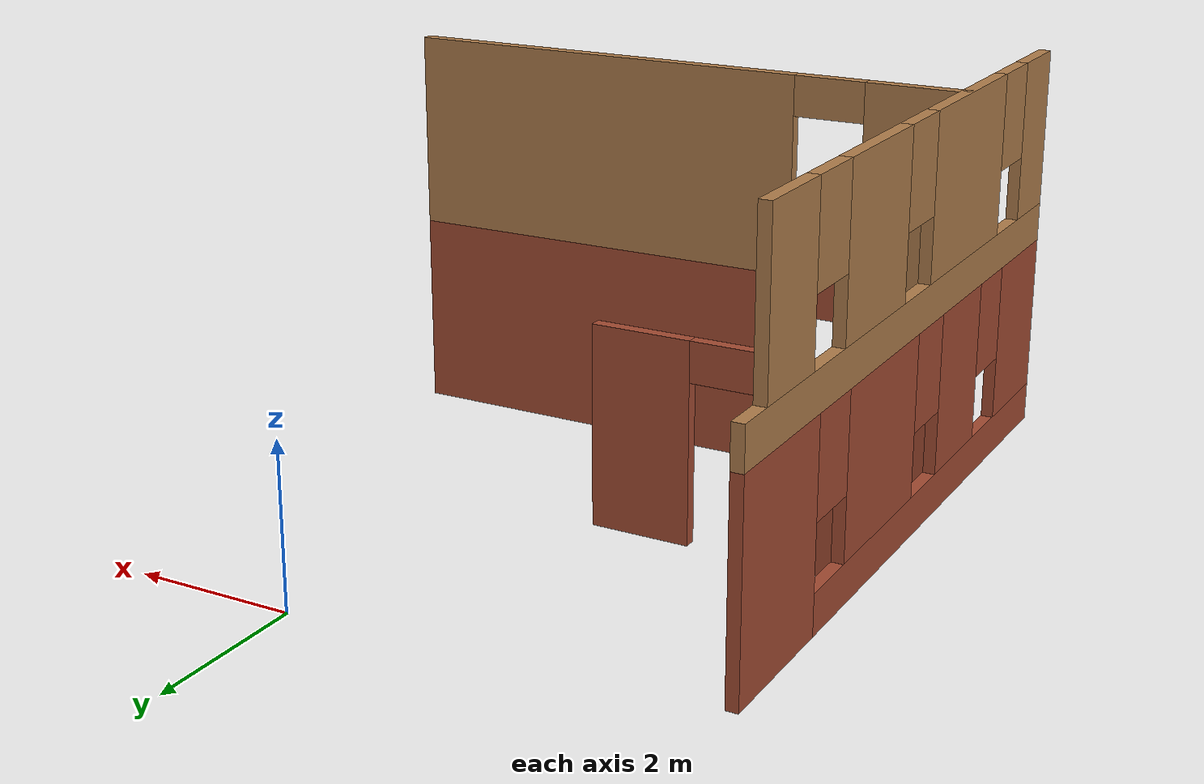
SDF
<sdf version="1.7">
 <model name="House">
  <pose>3.17663 -1.38106 0 0 -0 0</pose>
  <link name="Wall_17">
   <pose>-6.525 -2.26679 0 0 -0 3.14159</pose>
   <visual name="Wall_17_Visual_0">
    <pose>-1.00117 0 1.25 0 -0 0</pose>
    <geometry><box><size>1.24766 0.15 2.5</size></box></geometry>
    <material>
     <script><uri>file://media/materials/scripts/gazebo.material</uri><name>Gazebo/Bricks</name></script>
     <ambient>0.921569 0.807843 0.615686 1</ambient>
    </material>
    <meta><layer>0</layer></meta>
   </visual>
   <collision name="Wall_17_Collision_0">
    <geometry><box><size>1.24766 0.15 2.5</size></box></geometry>
    <pose>-1.00117 0 1.25 0 -0 0</pose>
   </collision>
   <visual name="Wall_17_Visual_1">
    <pose>1.07383 0 1.25 0 -0 0</pose>
    <geometry><box><size>1.10234 0.15 2.5</size></box></geometry>
    <material>
     <script><uri>file://media/materials/scripts/gazebo.material</uri><name>Gazebo/Bricks</name></script>
     <ambient>0.921569 0.807843 0.615686 1</ambient>
    </material>
    <meta><layer>0</layer></meta>
   </visual>
   <collision name="Wall_17_Collision_1">
    <geometry><box><size>1.10234 0.15 2.5</size></box></geometry>
    <pose>1.07383 0 1.25 0 -0 0</pose>
   </collision>
   <visual name="Wall_17_Visual_2">
    <pose>0.072664 0 2.25 0 -0 0</pose>
    <geometry><box><size>0.9 0.15 0.5</size></box></geometry>
    <material>
     <script><uri>file://media/materials/scripts/gazebo.material</uri><name>Gazebo/Bricks</name></script>
     <ambient>0.921569 0.807843 0.615686 1</ambient>
    </material>
    <meta><layer>0</layer></meta>
   </visual>
   <collision name="Wall_17_Collision_2">
    <geometry><box><size>0.9 0.15 0.5</size></box></geometry>
    <pose>0.072664 0 2.25 0 -0 0</pose>
   </collision>
  </link>
  <link name="Wall_2">
   <pose>-8.225 -3.54179 0 0 -0 -1.5708</pose>
   <visual name="Wall_2_Visual_0">
    <pose>-3.60549 0 1.25 0 -0 0</pose>
    <geometry><box><size>1.78902 0.15 2.5</size></box></geometry>
    <material>
     <script><uri>file://media/materials/scripts/gazebo.material</uri><name>Gazebo/Bricks</name></script>
     <ambient>0.435294 0.796078 0.67451 1</ambient>
    </material>
    <meta><layer>0</layer></meta>
   </visual>
   <collision name="Wall_2_Collision_0">
    <geometry><box><size>1.78902 0.15 2.5</size></box></geometry>
    <pose>-3.60549 0 1.25 0 -0 0</pose>
   </collision>
   <visual name="Wall_2_Visual_1">
    <pose>0.894508 0 0.25 0 -0 0</pose>
    <geometry><box><size>7.21098 0.15 0.5</size></box></geometry>
    <material>
     <script><uri>file://media/materials/scripts/gazebo.material</uri><name>Gazebo/Bricks</name></script>
     <ambient>0.435294 0.796078 0.67451 1</ambient>
    </material>
    <meta><layer>0</layer></meta>
   </visual>
   <collision name="Wall_2_Collision_1">
    <geometry><box><size>7.21098 0.15 0.5</size></box></geometry>
    <pose>0.894508 0 0.25 0 -0 0</pose>
   </collision>
   <visual name="Wall_2_Visual_2">
    <pose>-0.904174 0 1.5 0 -0 0</pose>
    <geometry><box><size>2.01362 0.15 2</size></box></geometry>
    <material>
     <script><uri>file://media/materials/scripts/gazebo.material</uri><name>Gazebo/Bricks</name></script>
     <ambient>0.435294 0.796078 0.67451 1</ambient>
    </material>
    <meta><layer>0</layer></meta>
   </visual>
   <collision name="Wall_2_Collision_2">
    <geometry><box><size>2.01362 0.15 2</size></box></geometry>
    <pose>-0.904174 0 1.5 0 -0 0</pose>
   </collision>
   <visual name="Wall_2_Visual_3">
    <pose>1.57485 0 1.5 0 -0 0</pose>
    <geometry><box><size>1.34443 0.15 2</size></box></geometry>
    <material>
     <script><uri>file://media/materials/scripts/gazebo.material</uri><name>Gazebo/Bricks</name></script>
     <ambient>0.435294 0.796078 0.67451 1</ambient>
    </material>
    <meta><layer>0</layer></meta>
   </visual>
   <collision name="Wall_2_Collision_3">
    <geometry><box><size>1.34443 0.15 2</size></box></geometry>
    <pose>1.57485 0 1.5 0 -0 0</pose>
   </collision>
   <visual name="Wall_2_Visual_4">
    <pose>3.77353 0 1.5 0 -0 0</pose>
    <geometry><box><size>1.45293 0.15 2</size></box></geometry>
    <material>
     <script><uri>file://media/materials/scripts/gazebo.material</uri><name>Gazebo/Bricks</name></script>
     <ambient>0.435294 0.796078 0.67451 1</ambient>
    </material>
    <meta><layer>0</layer></meta>
   </visual>
   <collision name="Wall_2_Collision_4">
    <geometry><box><size>1.45293 0.15 2</size></box></geometry>
    <pose>3.77353 0 1.5 0 -0 0</pose>
   </collision>
   <visual name="Wall_2_Visual_5">
    <pose>-2.31098 0 1.9 0 -0 0</pose>
    <geometry><box><size>0.8 0.15 1.2</size></box></geometry>
    <material>
     <script><uri>file://media/materials/scripts/gazebo.material</uri><name>Gazebo/Bricks</name></script>
     <ambient>0.435294 0.796078 0.67451 1</ambient>
    </material>
    <meta><layer>0</layer></meta>
   </visual>
   <collision name="Wall_2_Collision_5">
    <geometry><box><size>0.8 0.15 1.2</size></box></geometry>
    <pose>-2.31098 0 1.9 0 -0 0</pose>
   </collision>
   <visual name="Wall_2_Visual_6">
    <pose>0.502635 0 1.9 0 -0 0</pose>
    <geometry><box><size>0.8 0.15 1.2</size></box></geometry>
    <material>
     <script><uri>file://media/materials/scripts/gazebo.material</uri><name>Gazebo/Bricks</name></script>
     <ambient>0.435294 0.796078 0.67451 1</ambient>
    </material>
    <meta><layer>0</layer></meta>
   </visual>
   <collision name="Wall_2_Collision_6">
    <geometry><box><size>0.8 0.15 1.2</size></box></geometry>
    <pose>0.502635 0 1.9 0 -0 0</pose>
   </collision>
   <visual name="Wall_2_Visual_7">
    <pose>2.64707 0 1.9 0 -0 0</pose>
    <geometry><box><size>0.8 0.15 1.2</size></box></geometry>
    <material>
     <script><uri>file://media/materials/scripts/gazebo.material</uri><name>Gazebo/Bricks</name></script>
     <ambient>0.435294 0.796078 0.67451 1</ambient>
    </material>
    <meta><layer>0</layer></meta>
   </visual>
   <collision name="Wall_2_Collision_7">
    <geometry><box><size>0.8 0.15 1.2</size></box></geometry>
    <pose>2.64707 0 1.9 0 -0 0</pose>
   </collision>
  </link>
  <link name="Wall_22">
   <pose>-4.53479 -5.06341 0 0 -0 0</pose>
   <visual name="Wall_22_Visual_0">
    <pose>-3.10385 0 1.25 0 -0 0</pose>
    <geometry><box><size>1.29229 0.15 2.5</size></box></geometry>
    <material>
     <script><uri>file://media/materials/scripts/gazebo.material</uri><name>Gazebo/Bricks</name></script>
     <ambient>1 1 1 1</ambient>
    </material>
    <meta><layer>0</layer></meta>
   </visual>
   <collision name="Wall_22_Collision_0">
    <geometry><box><size>1.29229 0.15 2.5</size></box></geometry>
    <pose>-3.10385 0 1.25 0 -0 0</pose>
   </collision>
   <visual name="Wall_22_Visual_1">
    <pose>1.09615 0 1.25 0 -0 0</pose>
    <geometry><box><size>5.30771 0.15 2.5</size></box></geometry>
    <material>
     <script><uri>file://media/materials/scripts/gazebo.material</uri><name>Gazebo/Bricks</name></script>
     <ambient>1 1 1 1</ambient>
    </material>
    <meta><layer>0</layer></meta>
   </visual>
   <collision name="Wall_22_Collision_1">
    <geometry><box><size>5.30771 0.15 2.5</size></box></geometry>
    <pose>1.09615 0 1.25 0 -0 0</pose>
   </collision>
   <visual name="Wall_22_Visual_2">
    <pose>-2.00771 0 2.25 0 -0 0</pose>
    <geometry><box><size>0.9 0.15 0.5</size></box></geometry>
    <material>
     <script><uri>file://media/materials/scripts/gazebo.material</uri><name>Gazebo/Bricks</name></script>
     <ambient>1 1 1 1</ambient>
    </material>
    <meta><layer>0</layer></meta>
   </visual>
   <collision name="Wall_22_Collision_2">
    <geometry><box><size>0.9 0.15 0.5</size></box></geometry>
    <pose>-2.00771 0 2.25 0 -0 0</pose>
   </collision>
  </link>
  <link name="Wall_28">
   <pose>-8.225 -3.54179 2.5 0 -0 -1.5708</pose>
   <visual name="Wall_28_Visual_0">
    <pose>0 0 0.25 0 -0 0</pose>
    <geometry><box><size>9 0.15 0.5</size></box></geometry>
    <material>
     <script><uri>file://media/materials/scripts/gazebo.material</uri><name>Gazebo/Wood</name></script>
     <ambient>1 1 1 1</ambient>
    </material>
    <meta><layer>1</layer></meta>
   </visual>
   <collision name="Wall_28_Collision_0">
    <geometry><box><size>9 0.15 0.5</size></box></geometry>
    <pose>0 0 0.25 0 -0 0</pose>
   </collision>
   <visual name="Wall_28_Visual_1">
    <pose>-3.46468 0 1.5 0 -0 0</pose>
    <geometry><box><size>1.11079 0.15 2</size></box></geometry>
    <material>
     <script><uri>file://media/materials/scripts/gazebo.material</uri><name>Gazebo/Wood</name></script>
     <ambient>1 1 1 1</ambient>
    </material>
    <meta><layer>1</layer></meta>
   </visual>
   <collision name="Wall_28_Collision_1">
    <geometry><box><size>1.11079 0.15 2</size></box></geometry>
    <pose>-3.46468 0 1.5 0 -0 0</pose>
   </collision>
   <visual name="Wall_28_Visual_2">
    <pose>-1.26225 0 1.5 0 -0 0</pose>
    <geometry><box><size>1.69408 0.15 2</size></box></geometry>
    <material>
     <script><uri>file://media/materials/scripts/gazebo.material</uri><name>Gazebo/Wood</name></script>
     <ambient>1 1 1 1</ambient>
    </material>
    <meta><layer>1</layer></meta>
   </visual>
   <collision name="Wall_28_Collision_2">
    <geometry><box><size>1.69408 0.15 2</size></box></geometry>
    <pose>-1.26225 0 1.5 0 -0 0</pose>
   </collision>
   <visual name="Wall_28_Visual_3">
    <pose>1.56371 0 1.5 0 -0 0</pose>
    <geometry><box><size>2.35783 0.15 2</size></box></geometry>
    <material>
     <script><uri>file://media/materials/scripts/gazebo.material</uri><name>Gazebo/Wood</name></script>
     <ambient>1 1 1 1</ambient>
    </material>
    <meta><layer>1</layer></meta>
   </visual>
   <collision name="Wall_28_Collision_3">
    <geometry><box><size>2.35783 0.15 2</size></box></geometry>
    <pose>1.56371 0 1.5 0 -0 0</pose>
   </collision>
   <visual name="Wall_28_Visual_4">
    <pose>4.02131 0 1.5 0 -0 0</pose>
    <geometry><box><size>0.957373 0.15 2</size></box></geometry>
    <material>
     <script><uri>file://media/materials/scripts/gazebo.material</uri><name>Gazebo/Wood</name></script>
     <ambient>1 1 1 1</ambient>
    </material>
    <meta><layer>1</layer></meta>
   </visual>
   <collision name="Wall_28_Collision_4">
    <geometry><box><size>0.957373 0.15 2</size></box></geometry>
    <pose>4.02131 0 1.5 0 -0 0</pose>
   </collision>
   <visual name="Wall_28_Visual_5">
    <pose>-2.50929 0 1.9 0 -0 0</pose>
    <geometry><box><size>0.8 0.15 1.2</size></box></geometry>
    <material>
     <script><uri>file://media/materials/scripts/gazebo.material</uri><name>Gazebo/Wood</name></script>
     <ambient>1 1 1 1</ambient>
    </material>
    <meta><layer>1</layer></meta>
   </visual>
   <collision name="Wall_28_Collision_5">
    <geometry><box><size>0.8 0.15 1.2</size></box></geometry>
    <pose>-2.50929 0 1.9 0 -0 0</pose>
   </collision>
   <visual name="Wall_28_Visual_6">
    <pose>-0.015204 0 1.9 0 -0 0</pose>
    <geometry><box><size>0.8 0.15 1.2</size></box></geometry>
    <material>
     <script><uri>file://media/materials/scripts/gazebo.material</uri><name>Gazebo/Wood</name></script>
     <ambient>1 1 1 1</ambient>
    </material>
    <meta><layer>1</layer></meta>
   </visual>
   <collision name="Wall_28_Collision_6">
    <geometry><box><size>0.8 0.15 1.2</size></box></geometry>
    <pose>-0.015204 0 1.9 0 -0 0</pose>
   </collision>
   <visual name="Wall_28_Visual_7">
    <pose>3.14263 0 1.9 0 -0 0</pose>
    <geometry><box><size>0.8 0.15 1.2</size></box></geometry>
    <material>
     <script><uri>file://media/materials/scripts/gazebo.material</uri><name>Gazebo/Wood</name></script>
     <ambient>1 1 1 1</ambient>
    </material>
    <meta><layer>1</layer></meta>
   </visual>
   <collision name="Wall_28_Collision_7">
    <geometry><box><size>0.8 0.15 1.2</size></box></geometry>
    <pose>3.14263 0 1.9 0 -0 0</pose>
   </collision>
  </link>
  <link name="Wall_43">
   <pose>-4.53479 -5.06341 2.5 0 -0 0</pose>
   <visual name="Wall_43_Visual_0">
    <pose>-3.10799 0 1.25 0 -0 0</pose>
    <geometry><box><size>1.28403 0.15 2.5</size></box></geometry>
    <material>
     <script><uri>file://media/materials/scripts/gazebo.material</uri><name>Gazebo/Wood</name></script>
     <ambient>1 1 1 1</ambient>
    </material>
    <meta><layer>1</layer></meta>
   </visual>
   <collision name="Wall_43_Collision_0">
    <geometry><box><size>1.28403 0.15 2.5</size></box></geometry>
    <pose>-3.10799 0 1.25 0 -0 0</pose>
   </collision>
   <visual name="Wall_43_Visual_1">
    <pose>1.09201 0 1.25 0 -0 0</pose>
    <geometry><box><size>5.31597 0.15 2.5</size></box></geometry>
    <material>
     <script><uri>file://media/materials/scripts/gazebo.material</uri><name>Gazebo/Wood</name></script>
     <ambient>1 1 1 1</ambient>
    </material>
    <meta><layer>1</layer></meta>
   </visual>
   <collision name="Wall_43_Collision_1">
    <geometry><box><size>5.31597 0.15 2.5</size></box></geometry>
    <pose>1.09201 0 1.25 0 -0 0</pose>
   </collision>
   <visual name="Wall_43_Visual_2">
    <pose>-2.01597 0 2.25 0 -0 0</pose>
    <geometry><box><size>0.9 0.15 0.5</size></box></geometry>
    <material>
     <script><uri>file://media/materials/scripts/gazebo.material</uri><name>Gazebo/Wood</name></script>
     <ambient>1 1 1 1</ambient>
    </material>
    <meta><layer>1</layer></meta>
   </visual>
   <collision name="Wall_43_Collision_2">
    <geometry><box><size>0.9 0.15 0.5</size></box></geometry>
    <pose>-2.01597 0 2.25 0 -0 0</pose>
   </collision>
  </link>
  <static>1</static>
 </model>
</sdf>
